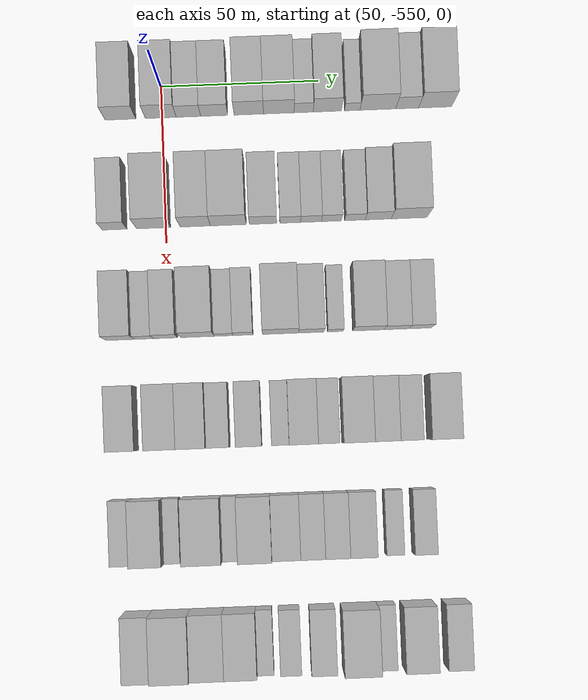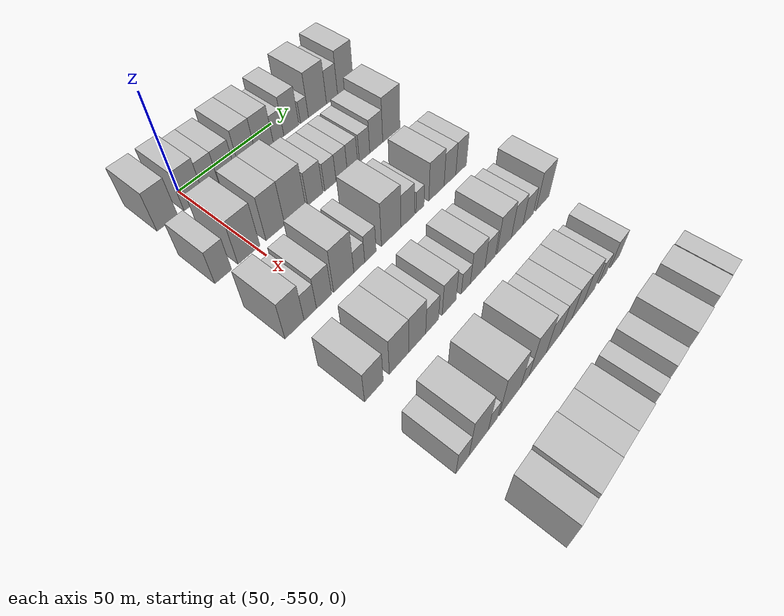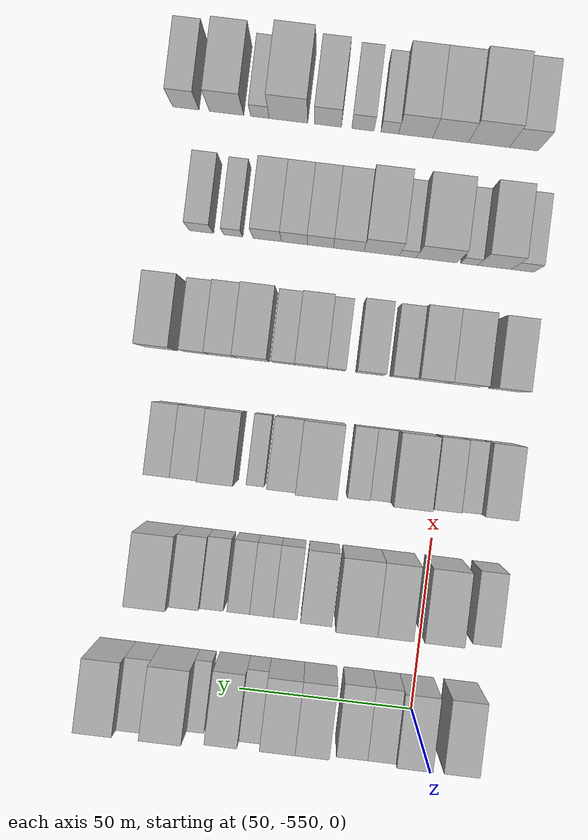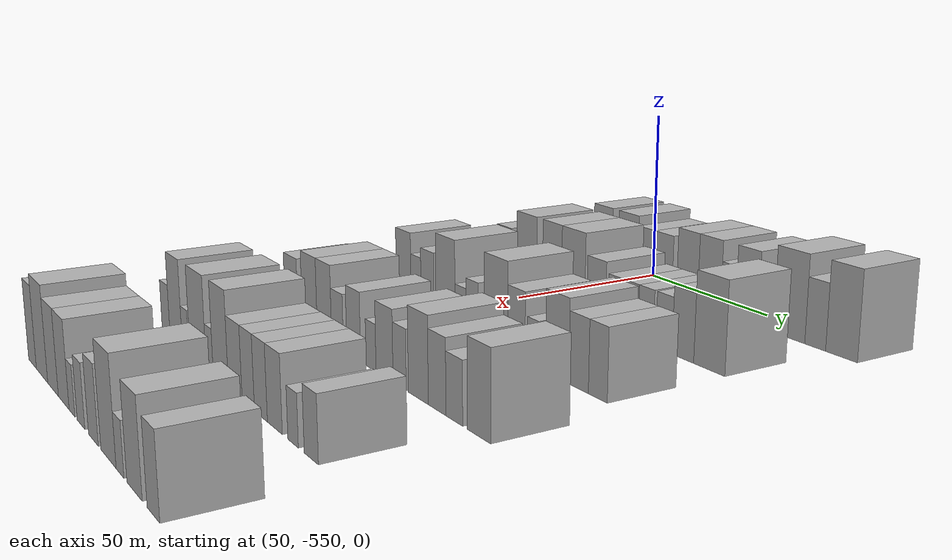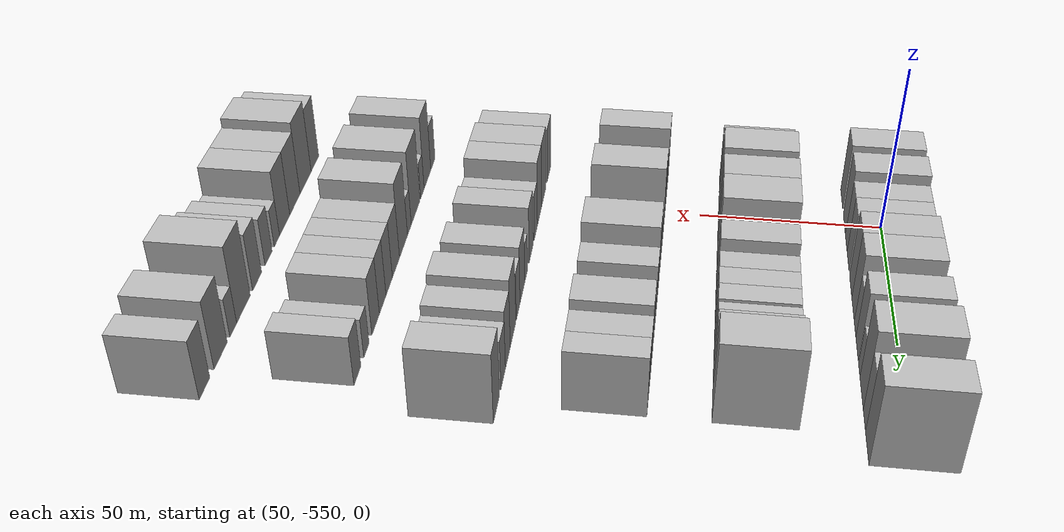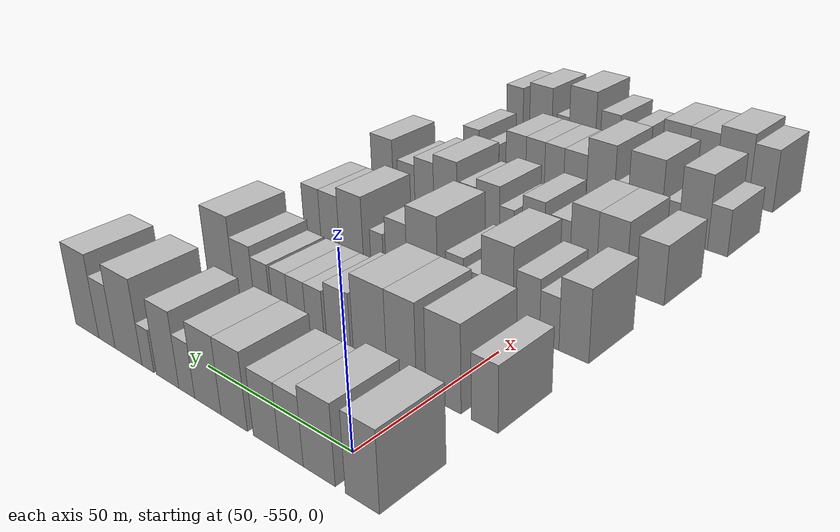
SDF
<sdf version="1.6">
 <world name="default">
  <model name="building_1">
   <static>1</static>
   <pose>50.0000 -563.1156 0 0.000000 0.000000 0.000000</pose>
   <link name="link">
    <pose>0 0 10.50 0 0 0</pose>
    <collision name="collision"><geometry><box><size>20.0000 9.7688 21.0000</size></box></geometry></collision>
    <visual name="visual">
     <cast_shadows>0</cast_shadows>
     <geometry><box><size>20.0000 9.7688 21.0000</size></box></geometry>
     <material>
      <script>
       <uri>model://HANNAS_wall/materials/scripts</uri>
       <uri>model://HANNAS_wall/materials/textures</uri>
       <name>vrc/HANNAS_wall</name>
      </script>
     </material>
    </visual>
   </link>
  </model>
  <model name="building_2">
   <static>1</static>
   <pose>50.0000 -550.3278 0 0.000000 0.000000 0.000000</pose>
   <link name="link">
    <pose>0 0 10.50 0 0 0</pose>
    <collision name="collision"><geometry><box><size>20.0000 9.8068 21.0000</size></box></geometry></collision>
    <visual name="visual">
     <cast_shadows>0</cast_shadows>
     <geometry><box><size>20.0000 9.8068 21.0000</size></box></geometry>
     <material>
      <script>
       <uri>model://HANNAS_wall/materials/scripts</uri>
       <uri>model://HANNAS_wall/materials/textures</uri>
       <name>vrc/HANNAS_wall</name>
      </script>
     </material>
    </visual>
   </link>
  </model>
  <model name="building_3">
   <static>1</static>
   <pose>50.0000 -541.5469 0 0.000000 0.000000 0.000000</pose>
   <link name="link">
    <pose>0 0 9.00 0 0 0</pose>
    <collision name="collision"><geometry><box><size>20.0000 7.7550 18.0000</size></box></geometry></collision>
    <visual name="visual">
     <cast_shadows>0</cast_shadows>
     <geometry><box><size>20.0000 7.7550 18.0000</size></box></geometry>
     <material>
      <script>
       <uri>model://HANNAS_wall/materials/scripts</uri>
       <uri>model://HANNAS_wall/materials/textures</uri>
       <name>vrc/HANNAS_wall</name>
      </script>
     </material>
    </visual>
   </link>
  </model>
  <model name="building_4">
   <static>1</static>
   <pose>50.0000 -533.3783 0 0.000000 0.000000 0.000000</pose>
   <link name="link">
    <pose>0 0 9.00 0 0 0</pose>
    <collision name="collision"><geometry><box><size>20.0000 8.5822 18.0000</size></box></geometry></collision>
    <visual name="visual">
     <cast_shadows>0</cast_shadows>
     <geometry><box><size>20.0000 8.5822 18.0000</size></box></geometry>
     <material>
      <script>
       <uri>model://HANNAS_wall/materials/scripts</uri>
       <uri>model://HANNAS_wall/materials/textures</uri>
       <name>vrc/HANNAS_wall</name>
      </script>
     </material>
    </visual>
   </link>
  </model>
  <model name="building_5">
   <static>1</static>
   <pose>50.0000 -522.4231 0 0.000000 0.000000 0.000000</pose>
   <link name="link">
    <pose>0 0 10.50 0 0 0</pose>
    <collision name="collision"><geometry><box><size>20.0000 9.3281 21.0000</size></box></geometry></collision>
    <visual name="visual">
     <cast_shadows>0</cast_shadows>
     <geometry><box><size>20.0000 9.3281 21.0000</size></box></geometry>
     <material>
      <script>
       <uri>model://HANNAS_wall/materials/scripts</uri>
       <uri>model://HANNAS_wall/materials/textures</uri>
       <name>vrc/HANNAS_wall</name>
      </script>
     </material>
    </visual>
   </link>
  </model>
  <model name="building_6">
   <static>1</static>
   <pose>50.0000 -512.9156 0 0.000000 0.000000 0.000000</pose>
   <link name="link">
    <pose>0 0 10.50 0 0 0</pose>
    <collision name="collision"><geometry><box><size>20.0000 9.6869 21.0000</size></box></geometry></collision>
    <visual name="visual">
     <cast_shadows>0</cast_shadows>
     <geometry><box><size>20.0000 9.6869 21.0000</size></box></geometry>
     <material>
      <script>
       <uri>model://HANNAS_wall/materials/scripts</uri>
       <uri>model://HANNAS_wall/materials/textures</uri>
       <name>vrc/HANNAS_wall</name>
      </script>
     </material>
    </visual>
   </link>
  </model>
  <model name="building_7">
   <static>1</static>
   <pose>50.0000 -505.0529 0 0.000000 0.000000 0.000000</pose>
   <link name="link">
    <pose>0 0 7.50 0 0 0</pose>
    <collision name="collision"><geometry><box><size>20.0000 6.0387 15.0000</size></box></geometry></collision>
    <visual name="visual">
     <cast_shadows>0</cast_shadows>
     <geometry><box><size>20.0000 6.0387 15.0000</size></box></geometry>
     <material>
      <script>
       <uri>model://HANNAS_wall/materials/scripts</uri>
       <uri>model://HANNAS_wall/materials/textures</uri>
       <name>vrc/HANNAS_wall</name>
      </script>
     </material>
    </visual>
   </link>
  </model>
  <model name="building_8">
   <static>1</static>
   <pose>50.0000 -497.5625 0 0.000000 0.000000 0.000000</pose>
   <link name="link">
    <pose>0 0 10.50 0 0 0</pose>
    <collision name="collision"><geometry><box><size>20.0000 8.9421 21.0000</size></box></geometry></collision>
    <visual name="visual">
     <cast_shadows>0</cast_shadows>
     <geometry><box><size>20.0000 8.9421 21.0000</size></box></geometry>
     <material>
      <script>
       <uri>model://HANNAS_wall/materials/scripts</uri>
       <uri>model://HANNAS_wall/materials/textures</uri>
       <name>vrc/HANNAS_wall</name>
      </script>
     </material>
    </visual>
   </link>
  </model>
  <model name="building_9">
   <static>1</static>
   <pose>50.0000 -489.6624 0 0.000000 0.000000 0.000000</pose>
   <link name="link">
    <pose>0 0 6.00 0 0 0</pose>
    <collision name="collision"><geometry><box><size>20.0000 4.8581 12.0000</size></box></geometry></collision>
    <visual name="visual">
     <cast_shadows>0</cast_shadows>
     <geometry><box><size>20.0000 4.8581 12.0000</size></box></geometry>
     <material>
      <script>
       <uri>model://HANNAS_wall/materials/scripts</uri>
       <uri>model://HANNAS_wall/materials/textures</uri>
       <name>vrc/HANNAS_wall</name>
      </script>
     </material>
    </visual>
   </link>
  </model>
  <model name="building_10">
   <static>1</static>
   <pose>50.0000 -481.5373 0 0.000000 0.000000 0.000000</pose>
   <link name="link">
    <pose>0 0 12.00 0 0 0</pose>
    <collision name="collision"><geometry><box><size>20.0000 11.3920 24.0000</size></box></geometry></collision>
    <visual name="visual">
     <cast_shadows>0</cast_shadows>
     <geometry><box><size>20.0000 11.3920 24.0000</size></box></geometry>
     <material>
      <script>
       <uri>model://HANNAS_wall/materials/scripts</uri>
       <uri>model://HANNAS_wall/materials/textures</uri>
       <name>vrc/HANNAS_wall</name>
      </script>
     </material>
    </visual>
   </link>
  </model>
  <model name="building_11">
   <static>1</static>
   <pose>50.0000 -472.2387 0 0.000000 0.000000 0.000000</pose>
   <link name="link">
    <pose>0 0 9.00 0 0 0</pose>
    <collision name="collision"><geometry><box><size>20.0000 7.2051 18.0000</size></box></geometry></collision>
    <visual name="visual">
     <cast_shadows>0</cast_shadows>
     <geometry><box><size>20.0000 7.2051 18.0000</size></box></geometry>
     <material>
      <script>
       <uri>model://HANNAS_wall/materials/scripts</uri>
       <uri>model://HANNAS_wall/materials/textures</uri>
       <name>vrc/HANNAS_wall</name>
      </script>
     </material>
    </visual>
   </link>
  </model>
  <model name="building_12">
   <static>1</static>
   <pose>50.0000 -463.3675 0 0.000000 0.000000 0.000000</pose>
   <link name="link">
    <pose>0 0 12.00 0 0 0</pose>
    <collision name="collision"><geometry><box><size>20.0000 10.5374 24.0000</size></box></geometry></collision>
    <visual name="visual">
     <cast_shadows>0</cast_shadows>
     <geometry><box><size>20.0000 10.5374 24.0000</size></box></geometry>
     <material>
      <script>
       <uri>model://HANNAS_wall/materials/scripts</uri>
       <uri>model://HANNAS_wall/materials/textures</uri>
       <name>vrc/HANNAS_wall</name>
      </script>
     </material>
    </visual>
   </link>
  </model>
  <model name="building_128">
   <static>1</static>
   <pose>85.0000 -566.1062 0 0.000000 0.000000 0.000000</pose>
   <link name="link">
    <pose>0 0 9.00 0 0 0</pose>
    <collision name="collision"><geometry><box><size>20.0000 7.7876 18.0000</size></box></geometry></collision>
    <visual name="visual">
     <cast_shadows>0</cast_shadows>
     <geometry><box><size>20.0000 7.7876 18.0000</size></box></geometry>
     <material>
      <script>
       <uri>model://HANNAS_wall/materials/scripts</uri>
       <uri>model://HANNAS_wall/materials/textures</uri>
       <name>vrc/HANNAS_wall</name>
      </script>
     </material>
    </visual>
   </link>
  </model>
  <model name="building_129">
   <static>1</static>
   <pose>85.0000 -553.8434 0 0.000000 0.000000 0.000000</pose>
   <link name="link">
    <pose>0 0 12.00 0 0 0</pose>
    <collision name="collision"><geometry><box><size>20.0000 10.7380 24.0000</size></box></geometry></collision>
    <visual name="visual">
     <cast_shadows>0</cast_shadows>
     <geometry><box><size>20.0000 10.7380 24.0000</size></box></geometry>
     <material>
      <script>
       <uri>model://HANNAS_wall/materials/scripts</uri>
       <uri>model://HANNAS_wall/materials/textures</uri>
       <name>vrc/HANNAS_wall</name>
      </script>
     </material>
    </visual>
   </link>
  </model>
  <model name="building_130">
   <static>1</static>
   <pose>85.0000 -540.6589 0 0.000000 0.000000 0.000000</pose>
   <link name="link">
    <pose>0 0 12.00 0 0 0</pose>
    <collision name="collision"><geometry><box><size>20.0000 9.6310 24.0000</size></box></geometry></collision>
    <visual name="visual">
     <cast_shadows>0</cast_shadows>
     <geometry><box><size>20.0000 9.6310 24.0000</size></box></geometry>
     <material>
      <script>
       <uri>model://HANNAS_wall/materials/scripts</uri>
       <uri>model://HANNAS_wall/materials/textures</uri>
       <name>vrc/HANNAS_wall</name>
      </script>
     </material>
    </visual>
   </link>
  </model>
  <model name="building_131">
   <static>1</static>
   <pose>85.0000 -530.1989 0 0.000000 0.000000 0.000000</pose>
   <link name="link">
    <pose>0 0 12.00 0 0 0</pose>
    <collision name="collision"><geometry><box><size>20.0000 11.2890 24.0000</size></box></geometry></collision>
    <visual name="visual">
     <cast_shadows>0</cast_shadows>
     <geometry><box><size>20.0000 11.2890 24.0000</size></box></geometry>
     <material>
      <script>
       <uri>model://HANNAS_wall/materials/scripts</uri>
       <uri>model://HANNAS_wall/materials/textures</uri>
       <name>vrc/HANNAS_wall</name>
      </script>
     </material>
    </visual>
   </link>
  </model>
  <model name="building_132">
   <static>1</static>
   <pose>85.0000 -519.2594 0 0.000000 0.000000 0.000000</pose>
   <link name="link">
    <pose>0 0 9.00 0 0 0</pose>
    <collision name="collision"><geometry><box><size>20.0000 8.5899 18.0000</size></box></geometry></collision>
    <visual name="visual">
     <cast_shadows>0</cast_shadows>
     <geometry><box><size>20.0000 8.5899 18.0000</size></box></geometry>
     <material>
      <script>
       <uri>model://HANNAS_wall/materials/scripts</uri>
       <uri>model://HANNAS_wall/materials/textures</uri>
       <name>vrc/HANNAS_wall</name>
      </script>
     </material>
    </visual>
   </link>
  </model>
  <model name="building_133">
   <static>1</static>
   <pose>85.0000 -510.6794 0 0.000000 0.000000 0.000000</pose>
   <link name="link">
    <pose>0 0 7.50 0 0 0</pose>
    <collision name="collision"><geometry><box><size>20.0000 6.5701 15.0000</size></box></geometry></collision>
    <visual name="visual">
     <cast_shadows>0</cast_shadows>
     <geometry><box><size>20.0000 6.5701 15.0000</size></box></geometry>
     <material>
      <script>
       <uri>model://HANNAS_wall/materials/scripts</uri>
       <uri>model://HANNAS_wall/materials/textures</uri>
       <name>vrc/HANNAS_wall</name>
      </script>
     </material>
    </visual>
   </link>
  </model>
  <model name="building_134">
   <static>1</static>
   <pose>85.0000 -504.0886 0 0.000000 0.000000 0.000000</pose>
   <link name="link">
    <pose>0 0 7.50 0 0 0</pose>
    <collision name="collision"><geometry><box><size>20.0000 6.6116 15.0000</size></box></geometry></collision>
    <visual name="visual">
     <cast_shadows>0</cast_shadows>
     <geometry><box><size>20.0000 6.6116 15.0000</size></box></geometry>
     <material>
      <script>
       <uri>model://HANNAS_wall/materials/scripts</uri>
       <uri>model://HANNAS_wall/materials/textures</uri>
       <name>vrc/HANNAS_wall</name>
      </script>
     </material>
    </visual>
   </link>
  </model>
  <model name="building_135">
   <static>1</static>
   <pose>85.0000 -497.6505 0 0.000000 0.000000 0.000000</pose>
   <link name="link">
    <pose>0 0 7.50 0 0 0</pose>
    <collision name="collision"><geometry><box><size>20.0000 6.2647 15.0000</size></box></geometry></collision>
    <visual name="visual">
     <cast_shadows>0</cast_shadows>
     <geometry><box><size>20.0000 6.2647 15.0000</size></box></geometry>
     <material>
      <script>
       <uri>model://HANNAS_wall/materials/scripts</uri>
       <uri>model://HANNAS_wall/materials/textures</uri>
       <name>vrc/HANNAS_wall</name>
      </script>
     </material>
    </visual>
   </link>
  </model>
  <model name="building_136">
   <static>1</static>
   <pose>85.0000 -490.2501 0 0.000000 0.000000 0.000000</pose>
   <link name="link">
    <pose>0 0 7.50 0 0 0</pose>
    <collision name="collision"><geometry><box><size>20.0000 6.5360 15.0000</size></box></geometry></collision>
    <visual name="visual">
     <cast_shadows>0</cast_shadows>
     <geometry><box><size>20.0000 6.5360 15.0000</size></box></geometry>
     <material>
      <script>
       <uri>model://HANNAS_wall/materials/scripts</uri>
       <uri>model://HANNAS_wall/materials/textures</uri>
       <name>vrc/HANNAS_wall</name>
      </script>
     </material>
    </visual>
   </link>
  </model>
  <model name="building_137">
   <static>1</static>
   <pose>85.0000 -482.8668 0 0.000000 0.000000 0.000000</pose>
   <link name="link">
    <pose>0 0 9.00 0 0 0</pose>
    <collision name="collision"><geometry><box><size>20.0000 8.2305 18.0000</size></box></geometry></collision>
    <visual name="visual">
     <cast_shadows>0</cast_shadows>
     <geometry><box><size>20.0000 8.2305 18.0000</size></box></geometry>
     <material>
      <script>
       <uri>model://HANNAS_wall/materials/scripts</uri>
       <uri>model://HANNAS_wall/materials/textures</uri>
       <name>vrc/HANNAS_wall</name>
      </script>
     </material>
    </visual>
   </link>
  </model>
  <model name="building_138">
   <static>1</static>
   <pose>85.0000 -473.0894 0 0.000000 0.000000 0.000000</pose>
   <link name="link">
    <pose>0 0 12.00 0 0 0</pose>
    <collision name="collision"><geometry><box><size>20.0000 11.3242 24.0000</size></box></geometry></collision>
    <visual name="visual">
     <cast_shadows>0</cast_shadows>
     <geometry><box><size>20.0000 11.3242 24.0000</size></box></geometry>
     <material>
      <script>
       <uri>model://HANNAS_wall/materials/scripts</uri>
       <uri>model://HANNAS_wall/materials/textures</uri>
       <name>vrc/HANNAS_wall</name>
      </script>
     </material>
    </visual>
   </link>
  </model>
  <model name="building_261">
   <static>1</static>
   <pose>120.0000 -565.4974 0 0.000000 0.000000 0.000000</pose>
   <link name="link">
    <pose>0 0 10.50 0 0 0</pose>
    <collision name="collision"><geometry><box><size>20.0000 9.0052 21.0000</size></box></geometry></collision>
    <visual name="visual">
     <cast_shadows>0</cast_shadows>
     <geometry><box><size>20.0000 9.0052 21.0000</size></box></geometry>
     <material>
      <script>
       <uri>model://HANNAS_wall/materials/scripts</uri>
       <uri>model://HANNAS_wall/materials/textures</uri>
       <name>vrc/HANNAS_wall</name>
      </script>
     </material>
    </visual>
   </link>
  </model>
  <model name="building_262">
   <static>1</static>
   <pose>120.0000 -557.9876 0 0.000000 0.000000 0.000000</pose>
   <link name="link">
    <pose>0 0 7.50 0 0 0</pose>
    <collision name="collision"><geometry><box><size>20.0000 6.0143 15.0000</size></box></geometry></collision>
    <visual name="visual">
     <cast_shadows>0</cast_shadows>
     <geometry><box><size>20.0000 6.0143 15.0000</size></box></geometry>
     <material>
      <script>
       <uri>model://HANNAS_wall/materials/scripts</uri>
       <uri>model://HANNAS_wall/materials/textures</uri>
       <name>vrc/HANNAS_wall</name>
      </script>
     </material>
    </visual>
   </link>
  </model>
  <model name="building_263">
   <static>1</static>
   <pose>120.0000 -551.2094 0 0.000000 0.000000 0.000000</pose>
   <link name="link">
    <pose>0 0 9.00 0 0 0</pose>
    <collision name="collision"><geometry><box><size>20.0000 7.5421 18.0000</size></box></geometry></collision>
    <visual name="visual">
     <cast_shadows>0</cast_shadows>
     <geometry><box><size>20.0000 7.5421 18.0000</size></box></geometry>
     <material>
      <script>
       <uri>model://HANNAS_wall/materials/scripts</uri>
       <uri>model://HANNAS_wall/materials/textures</uri>
       <name>vrc/HANNAS_wall</name>
      </script>
     </material>
    </visual>
   </link>
  </model>
  <model name="building_264">
   <static>1</static>
   <pose>120.0000 -541.1665 0 0.000000 0.000000 0.000000</pose>
   <link name="link">
    <pose>0 0 12.00 0 0 0</pose>
    <collision name="collision"><geometry><box><size>20.0000 10.5438 24.0000</size></box></geometry></collision>
    <visual name="visual">
     <cast_shadows>0</cast_shadows>
     <geometry><box><size>20.0000 10.5438 24.0000</size></box></geometry>
     <material>
      <script>
       <uri>model://HANNAS_wall/materials/scripts</uri>
       <uri>model://HANNAS_wall/materials/textures</uri>
       <name>vrc/HANNAS_wall</name>
      </script>
     </material>
    </visual>
   </link>
  </model>
  <model name="building_265">
   <static>1</static>
   <pose>120.0000 -532.9576 0 0.000000 0.000000 0.000000</pose>
   <link name="link">
    <pose>0 0 6.00 0 0 0</pose>
    <collision name="collision"><geometry><box><size>20.0000 5.8739 12.0000</size></box></geometry></collision>
    <visual name="visual">
     <cast_shadows>0</cast_shadows>
     <geometry><box><size>20.0000 5.8739 12.0000</size></box></geometry>
     <material>
      <script>
       <uri>model://HANNAS_wall/materials/scripts</uri>
       <uri>model://HANNAS_wall/materials/textures</uri>
       <name>vrc/HANNAS_wall</name>
      </script>
     </material>
    </visual>
   </link>
  </model>
  <model name="building_266">
   <static>1</static>
   <pose>120.0000 -526.8695 0 0.000000 0.000000 0.000000</pose>
   <link name="link">
    <pose>0 0 7.50 0 0 0</pose>
    <collision name="collision"><geometry><box><size>20.0000 6.3025 15.0000</size></box></geometry></collision>
    <visual name="visual">
     <cast_shadows>0</cast_shadows>
     <geometry><box><size>20.0000 6.3025 15.0000</size></box></geometry>
     <material>
      <script>
       <uri>model://HANNAS_wall/materials/scripts</uri>
       <uri>model://HANNAS_wall/materials/textures</uri>
       <name>vrc/HANNAS_wall</name>
      </script>
     </material>
    </visual>
   </link>
  </model>
  <model name="building_267">
   <static>1</static>
   <pose>120.0000 -515.0863 0 0.000000 0.000000 0.000000</pose>
   <link name="link">
    <pose>0 0 12.00 0 0 0</pose>
    <collision name="collision"><geometry><box><size>20.0000 11.2638 24.0000</size></box></geometry></collision>
    <visual name="visual">
     <cast_shadows>0</cast_shadows>
     <geometry><box><size>20.0000 11.2638 24.0000</size></box></geometry>
     <material>
      <script>
       <uri>model://HANNAS_wall/materials/scripts</uri>
       <uri>model://HANNAS_wall/materials/textures</uri>
       <name>vrc/HANNAS_wall</name>
      </script>
     </material>
    </visual>
   </link>
  </model>
  <model name="building_268">
   <static>1</static>
   <pose>120.0000 -505.4330 0 0.000000 0.000000 0.000000</pose>
   <link name="link">
    <pose>0 0 9.00 0 0 0</pose>
    <collision name="collision"><geometry><box><size>20.0000 8.0428 18.0000</size></box></geometry></collision>
    <visual name="visual">
     <cast_shadows>0</cast_shadows>
     <geometry><box><size>20.0000 8.0428 18.0000</size></box></geometry>
     <material>
      <script>
       <uri>model://HANNAS_wall/materials/scripts</uri>
       <uri>model://HANNAS_wall/materials/textures</uri>
       <name>vrc/HANNAS_wall</name>
      </script>
     </material>
    </visual>
   </link>
  </model>
  <model name="building_269">
   <static>1</static>
   <pose>120.0000 -497.9026 0 0.000000 0.000000 0.000000</pose>
   <link name="link">
    <pose>0 0 6.00 0 0 0</pose>
    <collision name="collision"><geometry><box><size>20.0000 5.0181 12.0000</size></box></geometry></collision>
    <visual name="visual">
     <cast_shadows>0</cast_shadows>
     <geometry><box><size>20.0000 5.0181 12.0000</size></box></geometry>
     <material>
      <script>
       <uri>model://HANNAS_wall/materials/scripts</uri>
       <uri>model://HANNAS_wall/materials/textures</uri>
       <name>vrc/HANNAS_wall</name>
      </script>
     </material>
    </visual>
   </link>
  </model>
  <model name="building_270">
   <static>1</static>
   <pose>120.0000 -487.4864 0 0.000000 0.000000 0.000000</pose>
   <link name="link">
    <pose>0 0 10.50 0 0 0</pose>
    <collision name="collision"><geometry><box><size>20.0000 9.8142 21.0000</size></box></geometry></collision>
    <visual name="visual">
     <cast_shadows>0</cast_shadows>
     <geometry><box><size>20.0000 9.8142 21.0000</size></box></geometry>
     <material>
      <script>
       <uri>model://HANNAS_wall/materials/scripts</uri>
       <uri>model://HANNAS_wall/materials/textures</uri>
       <name>vrc/HANNAS_wall</name>
      </script>
     </material>
    </visual>
   </link>
  </model>
  <model name="building_271">
   <static>1</static>
   <pose>120.0000 -478.6787 0 0.000000 0.000000 0.000000</pose>
   <link name="link">
    <pose>0 0 9.00 0 0 0</pose>
    <collision name="collision"><geometry><box><size>20.0000 7.8012 18.0000</size></box></geometry></collision>
    <visual name="visual">
     <cast_shadows>0</cast_shadows>
     <geometry><box><size>20.0000 7.8012 18.0000</size></box></geometry>
     <material>
      <script>
       <uri>model://HANNAS_wall/materials/scripts</uri>
       <uri>model://HANNAS_wall/materials/textures</uri>
       <name>vrc/HANNAS_wall</name>
      </script>
     </material>
    </visual>
   </link>
  </model>
  <model name="building_272">
   <static>1</static>
   <pose>120.0000 -471.1748 0 0.000000 0.000000 0.000000</pose>
   <link name="link">
    <pose>0 0 9.00 0 0 0</pose>
    <collision name="collision"><geometry><box><size>20.0000 7.2066 18.0000</size></box></geometry></collision>
    <visual name="visual">
     <cast_shadows>0</cast_shadows>
     <geometry><box><size>20.0000 7.2066 18.0000</size></box></geometry>
     <material>
      <script>
       <uri>model://HANNAS_wall/materials/scripts</uri>
       <uri>model://HANNAS_wall/materials/textures</uri>
       <name>vrc/HANNAS_wall</name>
      </script>
     </material>
    </visual>
   </link>
  </model>
  <model name="building_387">
   <static>1</static>
   <pose>155.0000 -565.5315 0 0.000000 0.000000 0.000000</pose>
   <link name="link">
    <pose>0 0 9.00 0 0 0</pose>
    <collision name="collision"><geometry><box><size>20.0000 8.9371 18.0000</size></box></geometry></collision>
    <visual name="visual">
     <cast_shadows>0</cast_shadows>
     <geometry><box><size>20.0000 8.9371 18.0000</size></box></geometry>
     <material>
      <script>
       <uri>model://HANNAS_wall/materials/scripts</uri>
       <uri>model://HANNAS_wall/materials/textures</uri>
       <name>vrc/HANNAS_wall</name>
      </script>
     </material>
    </visual>
   </link>
  </model>
  <model name="building_388">
   <static>1</static>
   <pose>155.0000 -553.1890 0 0.000000 0.000000 0.000000</pose>
   <link name="link">
    <pose>0 0 10.50 0 0 0</pose>
    <collision name="collision"><geometry><box><size>20.0000 9.7479 21.0000</size></box></geometry></collision>
    <visual name="visual">
     <cast_shadows>0</cast_shadows>
     <geometry><box><size>20.0000 9.7479 21.0000</size></box></geometry>
     <material>
      <script>
       <uri>model://HANNAS_wall/materials/scripts</uri>
       <uri>model://HANNAS_wall/materials/textures</uri>
       <name>vrc/HANNAS_wall</name>
      </script>
     </material>
    </visual>
   </link>
  </model>
  <model name="building_389">
   <static>1</static>
   <pose>155.0000 -543.7847 0 0.000000 0.000000 0.000000</pose>
   <link name="link">
    <pose>0 0 10.50 0 0 0</pose>
    <collision name="collision"><geometry><box><size>20.0000 9.0606 21.0000</size></box></geometry></collision>
    <visual name="visual">
     <cast_shadows>0</cast_shadows>
     <geometry><box><size>20.0000 9.0606 21.0000</size></box></geometry>
     <material>
      <script>
       <uri>model://HANNAS_wall/materials/scripts</uri>
       <uri>model://HANNAS_wall/materials/textures</uri>
       <name>vrc/HANNAS_wall</name>
      </script>
     </material>
    </visual>
   </link>
  </model>
  <model name="building_390">
   <static>1</static>
   <pose>155.0000 -535.7208 0 0.000000 0.000000 0.000000</pose>
   <link name="link">
    <pose>0 0 7.50 0 0 0</pose>
    <collision name="collision"><geometry><box><size>20.0000 7.0672 15.0000</size></box></geometry></collision>
    <visual name="visual">
     <cast_shadows>0</cast_shadows>
     <geometry><box><size>20.0000 7.0672 15.0000</size></box></geometry>
     <material>
      <script>
       <uri>model://HANNAS_wall/materials/scripts</uri>
       <uri>model://HANNAS_wall/materials/textures</uri>
       <name>vrc/HANNAS_wall</name>
      </script>
     </material>
    </visual>
   </link>
  </model>
  <model name="building_391">
   <static>1</static>
   <pose>155.0000 -526.2038 0 0.000000 0.000000 0.000000</pose>
   <link name="link">
    <pose>0 0 9.00 0 0 0</pose>
    <collision name="collision"><geometry><box><size>20.0000 7.9668 18.0000</size></box></geometry></collision>
    <visual name="visual">
     <cast_shadows>0</cast_shadows>
     <geometry><box><size>20.0000 7.9668 18.0000</size></box></geometry>
     <material>
      <script>
       <uri>model://HANNAS_wall/materials/scripts</uri>
       <uri>model://HANNAS_wall/materials/textures</uri>
       <name>vrc/HANNAS_wall</name>
      </script>
     </material>
    </visual>
   </link>
  </model>
  <model name="building_392">
   <static>1</static>
   <pose>155.0000 -516.5125 0 0.000000 0.000000 0.000000</pose>
   <link name="link">
    <pose>0 0 6.00 0 0 0</pose>
    <collision name="collision"><geometry><box><size>20.0000 5.4158 12.0000</size></box></geometry></collision>
    <visual name="visual">
     <cast_shadows>0</cast_shadows>
     <geometry><box><size>20.0000 5.4158 12.0000</size></box></geometry>
     <material>
      <script>
       <uri>model://HANNAS_wall/materials/scripts</uri>
       <uri>model://HANNAS_wall/materials/textures</uri>
       <name>vrc/HANNAS_wall</name>
      </script>
     </material>
    </visual>
   </link>
  </model>
  <model name="building_393">
   <static>1</static>
   <pose>155.0000 -509.3394 0 0.000000 0.000000 0.000000</pose>
   <link name="link">
    <pose>0 0 9.00 0 0 0</pose>
    <collision name="collision"><geometry><box><size>20.0000 8.9303 18.0000</size></box></geometry></collision>
    <visual name="visual">
     <cast_shadows>0</cast_shadows>
     <geometry><box><size>20.0000 8.9303 18.0000</size></box></geometry>
     <material>
      <script>
       <uri>model://HANNAS_wall/materials/scripts</uri>
       <uri>model://HANNAS_wall/materials/textures</uri>
       <name>vrc/HANNAS_wall</name>
      </script>
     </material>
    </visual>
   </link>
  </model>
  <model name="building_394">
   <static>1</static>
   <pose>155.0000 -501.5509 0 0.000000 0.000000 0.000000</pose>
   <link name="link">
    <pose>0 0 7.50 0 0 0</pose>
    <collision name="collision"><geometry><box><size>20.0000 6.6467 15.0000</size></box></geometry></collision>
    <visual name="visual">
     <cast_shadows>0</cast_shadows>
     <geometry><box><size>20.0000 6.6467 15.0000</size></box></geometry>
     <material>
      <script>
       <uri>model://HANNAS_wall/materials/scripts</uri>
       <uri>model://HANNAS_wall/materials/textures</uri>
       <name>vrc/HANNAS_wall</name>
      </script>
     </material>
    </visual>
   </link>
  </model>
  <model name="building_395">
   <static>1</static>
   <pose>155.0000 -492.4727 0 0.000000 0.000000 0.000000</pose>
   <link name="link">
    <pose>0 0 10.50 0 0 0</pose>
    <collision name="collision"><geometry><box><size>20.0000 9.5096 21.0000</size></box></geometry></collision>
    <visual name="visual">
     <cast_shadows>0</cast_shadows>
     <geometry><box><size>20.0000 9.5096 21.0000</size></box></geometry>
     <material>
      <script>
       <uri>model://HANNAS_wall/materials/scripts</uri>
       <uri>model://HANNAS_wall/materials/textures</uri>
       <name>vrc/HANNAS_wall</name>
      </script>
     </material>
    </visual>
   </link>
  </model>
  <model name="building_396">
   <static>1</static>
   <pose>155.0000 -483.7379 0 0.000000 0.000000 0.000000</pose>
   <link name="link">
    <pose>0 0 9.00 0 0 0</pose>
    <collision name="collision"><geometry><box><size>20.0000 7.9601 18.0000</size></box></geometry></collision>
    <visual name="visual">
     <cast_shadows>0</cast_shadows>
     <geometry><box><size>20.0000 7.9601 18.0000</size></box></geometry>
     <material>
      <script>
       <uri>model://HANNAS_wall/materials/scripts</uri>
       <uri>model://HANNAS_wall/materials/textures</uri>
       <name>vrc/HANNAS_wall</name>
      </script>
     </material>
    </visual>
   </link>
  </model>
  <model name="building_397">
   <static>1</static>
   <pose>155.0000 -476.1297 0 0.000000 0.000000 0.000000</pose>
   <link name="link">
    <pose>0 0 7.50 0 0 0</pose>
    <collision name="collision"><geometry><box><size>20.0000 7.2562 15.0000</size></box></geometry></collision>
    <visual name="visual">
     <cast_shadows>0</cast_shadows>
     <geometry><box><size>20.0000 7.2562 15.0000</size></box></geometry>
     <material>
      <script>
       <uri>model://HANNAS_wall/materials/scripts</uri>
       <uri>model://HANNAS_wall/materials/textures</uri>
       <name>vrc/HANNAS_wall</name>
      </script>
     </material>
    </visual>
   </link>
  </model>
  <model name="building_398">
   <static>1</static>
   <pose>155.0000 -465.7853 0 0.000000 0.000000 0.000000</pose>
   <link name="link">
    <pose>0 0 10.50 0 0 0</pose>
    <collision name="collision"><geometry><box><size>20.0000 9.4326 21.0000</size></box></geometry></collision>
    <visual name="visual">
     <cast_shadows>0</cast_shadows>
     <geometry><box><size>20.0000 9.4326 21.0000</size></box></geometry>
     <material>
      <script>
       <uri>model://HANNAS_wall/materials/scripts</uri>
       <uri>model://HANNAS_wall/materials/textures</uri>
       <name>vrc/HANNAS_wall</name>
      </script>
     </material>
    </visual>
   </link>
  </model>
  <model name="building_515">
   <static>1</static>
   <pose>190.0000 -566.7304 0 0.000000 0.000000 0.000000</pose>
   <link name="link">
    <pose>0 0 7.50 0 0 0</pose>
    <collision name="collision"><geometry><box><size>20.0000 6.5392 15.0000</size></box></geometry></collision>
    <visual name="visual">
     <cast_shadows>0</cast_shadows>
     <geometry><box><size>20.0000 6.5392 15.0000</size></box></geometry>
     <material>
      <script>
       <uri>model://HANNAS_wall/materials/scripts</uri>
       <uri>model://HANNAS_wall/materials/textures</uri>
       <name>vrc/HANNAS_wall</name>
      </script>
     </material>
    </visual>
   </link>
  </model>
  <model name="building_516">
   <static>1</static>
   <pose>190.0000 -558.5120 0 0.000000 0.000000 0.000000</pose>
   <link name="link">
    <pose>0 0 12.00 0 0 0</pose>
    <collision name="collision"><geometry><box><size>20.0000 9.8976 24.0000</size></box></geometry></collision>
    <visual name="visual">
     <cast_shadows>0</cast_shadows>
     <geometry><box><size>20.0000 9.8976 24.0000</size></box></geometry>
     <material>
      <script>
       <uri>model://HANNAS_wall/materials/scripts</uri>
       <uri>model://HANNAS_wall/materials/textures</uri>
       <name>vrc/HANNAS_wall</name>
      </script>
     </material>
    </visual>
   </link>
  </model>
  <model name="building_517">
   <static>1</static>
   <pose>190.0000 -551.0857 0 0.000000 0.000000 0.000000</pose>
   <link name="link">
    <pose>0 0 6.00 0 0 0</pose>
    <collision name="collision"><geometry><box><size>20.0000 4.9550 12.0000</size></box></geometry></collision>
    <visual name="visual">
     <cast_shadows>0</cast_shadows>
     <geometry><box><size>20.0000 4.9550 12.0000</size></box></geometry>
     <material>
      <script>
       <uri>model://HANNAS_wall/materials/scripts</uri>
       <uri>model://HANNAS_wall/materials/textures</uri>
       <name>vrc/HANNAS_wall</name>
      </script>
     </material>
    </visual>
   </link>
  </model>
  <model name="building_518">
   <static>1</static>
   <pose>190.0000 -541.6216 0 0.000000 0.000000 0.000000</pose>
   <link name="link">
    <pose>0 0 12.00 0 0 0</pose>
    <collision name="collision"><geometry><box><size>20.0000 11.9733 24.0000</size></box></geometry></collision>
    <visual name="visual">
     <cast_shadows>0</cast_shadows>
     <geometry><box><size>20.0000 11.9733 24.0000</size></box></geometry>
     <material>
      <script>
       <uri>model://HANNAS_wall/materials/scripts</uri>
       <uri>model://HANNAS_wall/materials/textures</uri>
       <name>vrc/HANNAS_wall</name>
      </script>
     </material>
    </visual>
   </link>
  </model>
  <model name="building_519">
   <static>1</static>
   <pose>190.0000 -533.1628 0 0.000000 0.000000 0.000000</pose>
   <link name="link">
    <pose>0 0 6.00 0 0 0</pose>
    <collision name="collision"><geometry><box><size>20.0000 4.9444 12.0000</size></box></geometry></collision>
    <visual name="visual">
     <cast_shadows>0</cast_shadows>
     <geometry><box><size>20.0000 4.9444 12.0000</size></box></geometry>
     <material>
      <script>
       <uri>model://HANNAS_wall/materials/scripts</uri>
       <uri>model://HANNAS_wall/materials/textures</uri>
       <name>vrc/HANNAS_wall</name>
      </script>
     </material>
    </visual>
   </link>
  </model>
  <model name="building_520">
   <static>1</static>
   <pose>190.0000 -525.5404 0 0.000000 0.000000 0.000000</pose>
   <link name="link">
    <pose>0 0 12.00 0 0 0</pose>
    <collision name="collision"><geometry><box><size>20.0000 10.3003 24.0000</size></box></geometry></collision>
    <visual name="visual">
     <cast_shadows>0</cast_shadows>
     <geometry><box><size>20.0000 10.3003 24.0000</size></box></geometry>
     <material>
      <script>
       <uri>model://HANNAS_wall/materials/scripts</uri>
       <uri>model://HANNAS_wall/materials/textures</uri>
       <name>vrc/HANNAS_wall</name>
      </script>
     </material>
    </visual>
   </link>
  </model>
  <model name="building_521">
   <static>1</static>
   <pose>190.0000 -516.0081 0 0.000000 0.000000 0.000000</pose>
   <link name="link">
    <pose>0 0 9.00 0 0 0</pose>
    <collision name="collision"><geometry><box><size>20.0000 8.7643 18.0000</size></box></geometry></collision>
    <visual name="visual">
     <cast_shadows>0</cast_shadows>
     <geometry><box><size>20.0000 8.7643 18.0000</size></box></geometry>
     <material>
      <script>
       <uri>model://HANNAS_wall/materials/scripts</uri>
       <uri>model://HANNAS_wall/materials/textures</uri>
       <name>vrc/HANNAS_wall</name>
      </script>
     </material>
    </visual>
   </link>
  </model>
  <model name="building_522">
   <static>1</static>
   <pose>190.0000 -507.8506 0 0.000000 0.000000 0.000000</pose>
   <link name="link">
    <pose>0 0 9.00 0 0 0</pose>
    <collision name="collision"><geometry><box><size>20.0000 7.5506 18.0000</size></box></geometry></collision>
    <visual name="visual">
     <cast_shadows>0</cast_shadows>
     <geometry><box><size>20.0000 7.5506 18.0000</size></box></geometry>
     <material>
      <script>
       <uri>model://HANNAS_wall/materials/scripts</uri>
       <uri>model://HANNAS_wall/materials/textures</uri>
       <name>vrc/HANNAS_wall</name>
      </script>
     </material>
    </visual>
   </link>
  </model>
  <model name="building_523">
   <static>1</static>
   <pose>190.0000 -500.2896 0 0.000000 0.000000 0.000000</pose>
   <link name="link">
    <pose>0 0 9.00 0 0 0</pose>
    <collision name="collision"><geometry><box><size>20.0000 7.5715 18.0000</size></box></geometry></collision>
    <visual name="visual">
     <cast_shadows>0</cast_shadows>
     <geometry><box><size>20.0000 7.5715 18.0000</size></box></geometry>
     <material>
      <script>
       <uri>model://HANNAS_wall/materials/scripts</uri>
       <uri>model://HANNAS_wall/materials/textures</uri>
       <name>vrc/HANNAS_wall</name>
      </script>
     </material>
    </visual>
   </link>
  </model>
  <model name="building_524">
   <static>1</static>
   <pose>190.0000 -492.3469 0 0.000000 0.000000 0.000000</pose>
   <link name="link">
    <pose>0 0 9.00 0 0 0</pose>
    <collision name="collision"><geometry><box><size>20.0000 8.3140 18.0000</size></box></geometry></collision>
    <visual name="visual">
     <cast_shadows>0</cast_shadows>
     <geometry><box><size>20.0000 8.3140 18.0000</size></box></geometry>
     <material>
      <script>
       <uri>model://HANNAS_wall/materials/scripts</uri>
       <uri>model://HANNAS_wall/materials/textures</uri>
       <name>vrc/HANNAS_wall</name>
      </script>
     </material>
    </visual>
   </link>
  </model>
  <model name="building_525">
   <static>1</static>
   <pose>190.0000 -482.4453 0 0.000000 0.000000 0.000000</pose>
   <link name="link">
    <pose>0 0 6.00 0 0 0</pose>
    <collision name="collision"><geometry><box><size>20.0000 5.4891 12.0000</size></box></geometry></collision>
    <visual name="visual">
     <cast_shadows>0</cast_shadows>
     <geometry><box><size>20.0000 5.4891 12.0000</size></box></geometry>
     <material>
      <script>
       <uri>model://HANNAS_wall/materials/scripts</uri>
       <uri>model://HANNAS_wall/materials/textures</uri>
       <name>vrc/HANNAS_wall</name>
      </script>
     </material>
    </visual>
   </link>
  </model>
  <model name="building_526">
   <static>1</static>
   <pose>190.0000 -473.2016 0 0.000000 0.000000 0.000000</pose>
   <link name="link">
    <pose>0 0 7.50 0 0 0</pose>
    <collision name="collision"><geometry><box><size>20.0000 6.9983 15.0000</size></box></geometry></collision>
    <visual name="visual">
     <cast_shadows>0</cast_shadows>
     <geometry><box><size>20.0000 6.9983 15.0000</size></box></geometry>
     <material>
      <script>
       <uri>model://HANNAS_wall/materials/scripts</uri>
       <uri>model://HANNAS_wall/materials/textures</uri>
       <name>vrc/HANNAS_wall</name>
      </script>
     </material>
    </visual>
   </link>
  </model>
  <model name="building_643">
   <static>1</static>
   <pose>225.0000 -562.7665 0 0.000000 0.000000 0.000000</pose>
   <link name="link">
    <pose>0 0 10.50 0 0 0</pose>
    <collision name="collision"><geometry><box><size>20.0000 8.4669 21.0000</size></box></geometry></collision>
    <visual name="visual">
     <cast_shadows>0</cast_shadows>
     <geometry><box><size>20.0000 8.4669 21.0000</size></box></geometry>
     <material>
      <script>
       <uri>model://HANNAS_wall/materials/scripts</uri>
       <uri>model://HANNAS_wall/materials/textures</uri>
       <name>vrc/HANNAS_wall</name>
      </script>
     </material>
    </visual>
   </link>
  </model>
  <model name="building_644">
   <static>1</static>
   <pose>225.0000 -552.5884 0 0.000000 0.000000 0.000000</pose>
   <link name="link">
    <pose>0 0 12.00 0 0 0</pose>
    <collision name="collision"><geometry><box><size>20.0000 11.8894 24.0000</size></box></geometry></collision>
    <visual name="visual">
     <cast_shadows>0</cast_shadows>
     <geometry><box><size>20.0000 11.8894 24.0000</size></box></geometry>
     <material>
      <script>
       <uri>model://HANNAS_wall/materials/scripts</uri>
       <uri>model://HANNAS_wall/materials/textures</uri>
       <name>vrc/HANNAS_wall</name>
      </script>
     </material>
    </visual>
   </link>
  </model>
  <model name="building_645">
   <static>1</static>
   <pose>225.0000 -541.4210 0 0.000000 0.000000 0.000000</pose>
   <link name="link">
    <pose>0 0 10.50 0 0 0</pose>
    <collision name="collision"><geometry><box><size>20.0000 10.4455 21.0000</size></box></geometry></collision>
    <visual name="visual">
     <cast_shadows>0</cast_shadows>
     <geometry><box><size>20.0000 10.4455 21.0000</size></box></geometry>
     <material>
      <script>
       <uri>model://HANNAS_wall/materials/scripts</uri>
       <uri>model://HANNAS_wall/materials/textures</uri>
       <name>vrc/HANNAS_wall</name>
      </script>
     </material>
    </visual>
   </link>
  </model>
  <model name="building_646">
   <static>1</static>
   <pose>225.0000 -531.2115 0 0.000000 0.000000 0.000000</pose>
   <link name="link">
    <pose>0 0 10.50 0 0 0</pose>
    <collision name="collision"><geometry><box><size>20.0000 9.9734 21.0000</size></box></geometry></collision>
    <visual name="visual">
     <cast_shadows>0</cast_shadows>
     <geometry><box><size>20.0000 9.9734 21.0000</size></box></geometry>
     <material>
      <script>
       <uri>model://HANNAS_wall/materials/scripts</uri>
       <uri>model://HANNAS_wall/materials/textures</uri>
       <name>vrc/HANNAS_wall</name>
      </script>
     </material>
    </visual>
   </link>
  </model>
  <model name="building_647">
   <static>1</static>
   <pose>225.0000 -523.6839 0 0.000000 0.000000 0.000000</pose>
   <link name="link">
    <pose>0 0 6.00 0 0 0</pose>
    <collision name="collision"><geometry><box><size>20.0000 5.0817 12.0000</size></box></geometry></collision>
    <visual name="visual">
     <cast_shadows>0</cast_shadows>
     <geometry><box><size>20.0000 5.0817 12.0000</size></box></geometry>
     <material>
      <script>
       <uri>model://HANNAS_wall/materials/scripts</uri>
       <uri>model://HANNAS_wall/materials/textures</uri>
       <name>vrc/HANNAS_wall</name>
      </script>
     </material>
    </visual>
   </link>
  </model>
  <model name="building_648">
   <static>1</static>
   <pose>225.0000 -515.9083 0 0.000000 0.000000 0.000000</pose>
   <link name="link">
    <pose>0 0 7.50 0 0 0</pose>
    <collision name="collision"><geometry><box><size>20.0000 6.4696 15.0000</size></box></geometry></collision>
    <visual name="visual">
     <cast_shadows>0</cast_shadows>
     <geometry><box><size>20.0000 6.4696 15.0000</size></box></geometry>
     <material>
      <script>
       <uri>model://HANNAS_wall/materials/scripts</uri>
       <uri>model://HANNAS_wall/materials/textures</uri>
       <name>vrc/HANNAS_wall</name>
      </script>
     </material>
    </visual>
   </link>
  </model>
  <model name="building_649">
   <static>1</static>
   <pose>225.0000 -505.7638 0 0.000000 0.000000 0.000000</pose>
   <link name="link">
    <pose>0 0 9.00 0 0 0</pose>
    <collision name="collision"><geometry><box><size>20.0000 7.8193 18.0000</size></box></geometry></collision>
    <visual name="visual">
     <cast_shadows>0</cast_shadows>
     <geometry><box><size>20.0000 7.8193 18.0000</size></box></geometry>
     <material>
      <script>
       <uri>model://HANNAS_wall/materials/scripts</uri>
       <uri>model://HANNAS_wall/materials/textures</uri>
       <name>vrc/HANNAS_wall</name>
      </script>
     </material>
    </visual>
   </link>
  </model>
  <model name="building_650">
   <static>1</static>
   <pose>225.0000 -494.2530 0 0.000000 0.000000 0.000000</pose>
   <link name="link">
    <pose>0 0 12.00 0 0 0</pose>
    <collision name="collision"><geometry><box><size>20.0000 11.2024 24.0000</size></box></geometry></collision>
    <visual name="visual">
     <cast_shadows>0</cast_shadows>
     <geometry><box><size>20.0000 11.2024 24.0000</size></box></geometry>
     <material>
      <script>
       <uri>model://HANNAS_wall/materials/scripts</uri>
       <uri>model://HANNAS_wall/materials/textures</uri>
       <name>vrc/HANNAS_wall</name>
      </script>
     </material>
    </visual>
   </link>
  </model>
  <model name="building_651">
   <static>1</static>
   <pose>225.0000 -485.9417 0 0.000000 0.000000 0.000000</pose>
   <link name="link">
    <pose>0 0 6.00 0 0 0</pose>
    <collision name="collision"><geometry><box><size>20.0000 5.4200 12.0000</size></box></geometry></collision>
    <visual name="visual">
     <cast_shadows>0</cast_shadows>
     <geometry><box><size>20.0000 5.4200 12.0000</size></box></geometry>
     <material>
      <script>
       <uri>model://HANNAS_wall/materials/scripts</uri>
       <uri>model://HANNAS_wall/materials/textures</uri>
       <name>vrc/HANNAS_wall</name>
      </script>
     </material>
    </visual>
   </link>
  </model>
  <model name="building_652">
   <static>1</static>
   <pose>225.0000 -476.2235 0 0.000000 0.000000 0.000000</pose>
   <link name="link">
    <pose>0 0 10.50 0 0 0</pose>
    <collision name="collision"><geometry><box><size>20.0000 10.0165 21.0000</size></box></geometry></collision>
    <visual name="visual">
     <cast_shadows>0</cast_shadows>
     <geometry><box><size>20.0000 10.0165 21.0000</size></box></geometry>
     <material>
      <script>
       <uri>model://HANNAS_wall/materials/scripts</uri>
       <uri>model://HANNAS_wall/materials/textures</uri>
       <name>vrc/HANNAS_wall</name>
      </script>
     </material>
    </visual>
   </link>
  </model>
  <model name="building_653">
   <static>1</static>
   <pose>225.0000 -464.3931 0 0.000000 0.000000 0.000000</pose>
   <link name="link">
    <pose>0 0 9.00 0 0 0</pose>
    <collision name="collision"><geometry><box><size>20.0000 7.6442 18.0000</size></box></geometry></collision>
    <visual name="visual">
     <cast_shadows>0</cast_shadows>
     <geometry><box><size>20.0000 7.6442 18.0000</size></box></geometry>
     <material>
      <script>
       <uri>model://HANNAS_wall/materials/scripts</uri>
       <uri>model://HANNAS_wall/materials/textures</uri>
       <name>vrc/HANNAS_wall</name>
      </script>
     </material>
    </visual>
   </link>
  </model>
 </world>
</sdf>
